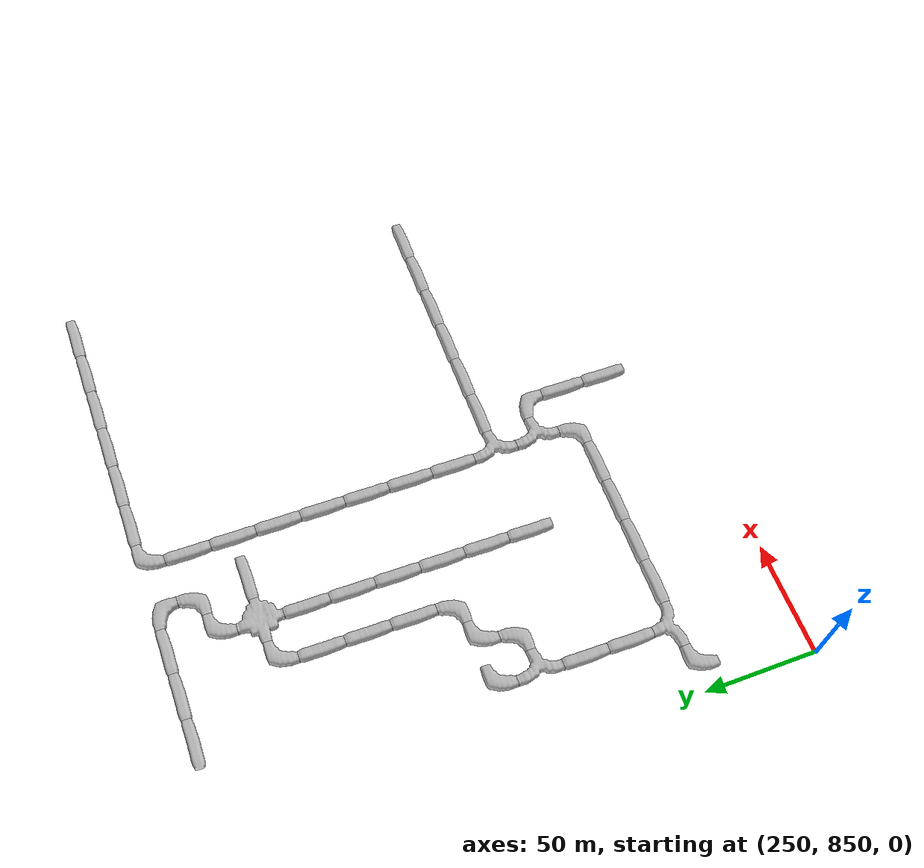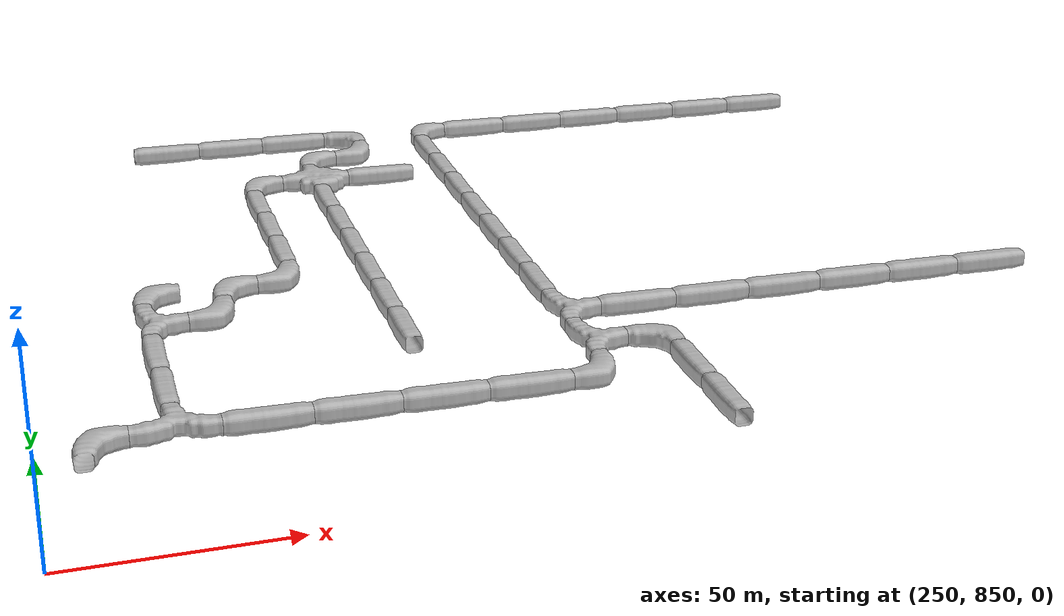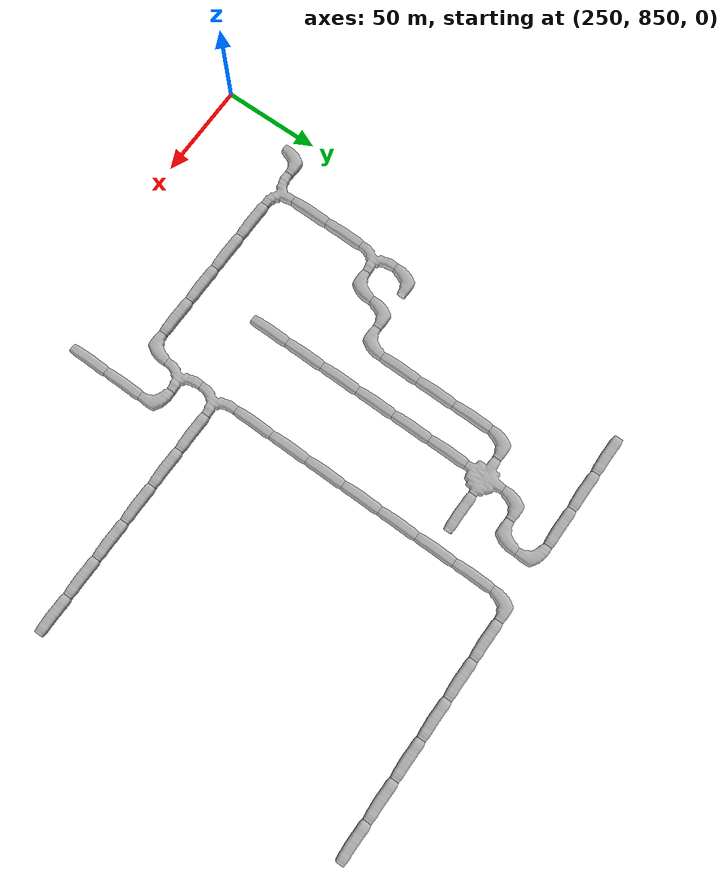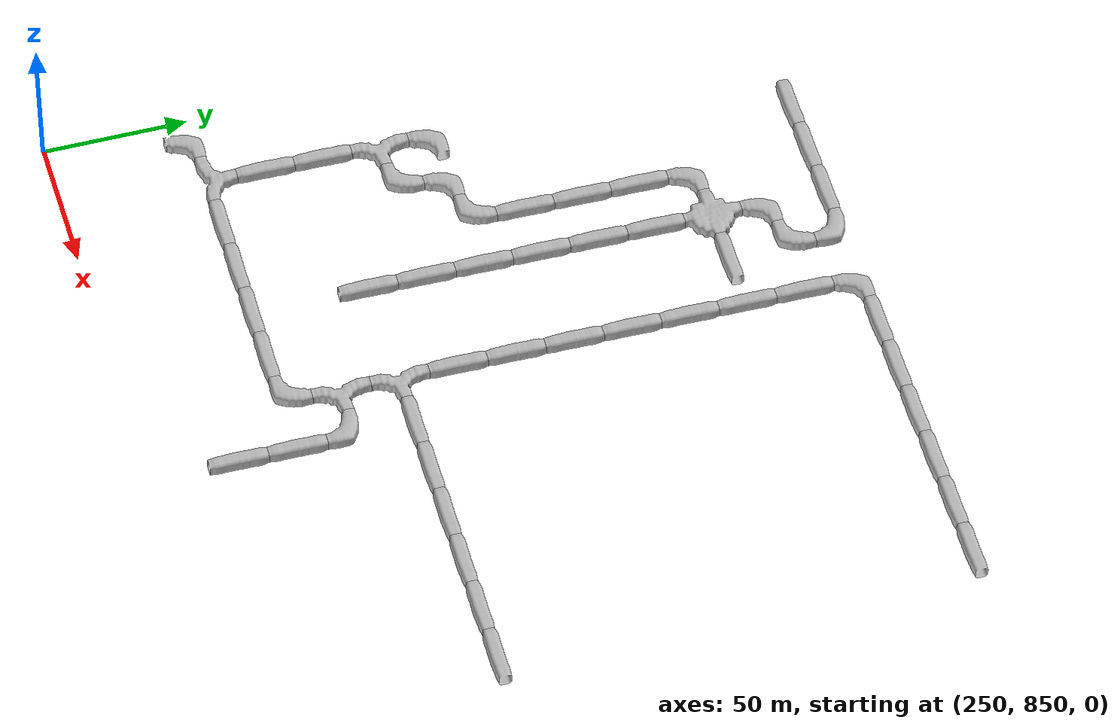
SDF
<sdf version="1.6">
 <world name="cave_32000_2">
  <include>
   <static>true</static>
   <name>cave_25_47</name>
   <pose>500 940 0 0 0 1.5707963267948966</pose>
   <uri>model://cave_straight_20m</uri>
  </include>
  <include>
   <static>true</static>
   <name>cave_24_47</name>
   <pose>480 940 0 0 0 1.5707963267948966</pose>
   <uri>model://cave_straight_20m</uri>
  </include>
  <include>
   <static>true</static>
   <name>cave_23_47</name>
   <pose>460 940 0 0 0 1.5707963267948966</pose>
   <uri>model://cave_straight_20m</uri>
  </include>
  <include>
   <static>true</static>
   <name>cave_22_47</name>
   <pose>440 940 0 0 0 1.5707963267948966</pose>
   <uri>model://cave_straight_20m</uri>
  </include>
  <include>
   <static>true</static>
   <name>cave_21_47</name>
   <pose>420 940 0 0 0 1.5707963267948966</pose>
   <uri>model://cave_straight_20m</uri>
  </include>
  <include>
   <static>true</static>
   <name>cave_20_47</name>
   <pose>400 940 0 0 0 1.5707963267948966</pose>
   <uri>model://cave_straight_20m</uri>
  </include>
  <include>
   <static>true</static>
   <name>cave_19_47</name>
   <pose>380 940 0 0 0 -1.5707963267948966</pose>
   <uri>model://cave_3way_20m</uri>
  </include>
  <include>
   <static>true</static>
   <name>cave_19_46</name>
   <pose>380 920 0 0 0 -1.5707963267948966</pose>
   <uri>model://cave_3way_20m</uri>
  </include>
  <include>
   <static>true</static>
   <name>cave_20_46</name>
   <pose>400 920 0 0 0 3.141592653589793</pose>
   <uri>model://cave_L_20m</uri>
  </include>
  <include>
   <static>true</static>
   <name>cave_20_45</name>
   <pose>400 900 0 0 0 0.0</pose>
   <uri>model://cave_straight_20m</uri>
  </include>
  <include>
   <static>true</static>
   <name>cave_20_44</name>
   <pose>400 880 0 0 0 0.0</pose>
   <uri>model://cave_straight_20m</uri>
  </include>
  <include>
   <static>true</static>
   <name>cave_19_45</name>
   <pose>380 900 0 0 0 1.5707963267948966</pose>
   <uri>model://cave_L_20m</uri>
  </include>
  <include>
   <static>true</static>
   <name>cave_18_45</name>
   <pose>360 900 0 0 0 1.5707963267948966</pose>
   <uri>model://cave_straight_20m</uri>
  </include>
  <include>
   <static>true</static>
   <name>cave_17_45</name>
   <pose>340 900 0 0 0 1.5707963267948966</pose>
   <uri>model://cave_straight_20m</uri>
  </include>
  <include>
   <static>true</static>
   <name>cave_16_45</name>
   <pose>320 900 0 0 0 1.5707963267948966</pose>
   <uri>model://cave_straight_20m</uri>
  </include>
  <include>
   <static>true</static>
   <name>cave_15_45</name>
   <pose>300 900 0 0 0 1.5707963267948966</pose>
   <uri>model://cave_straight_20m</uri>
  </include>
  <include>
   <static>true</static>
   <name>cave_14_45</name>
   <pose>280 900 0 0 0 0.0</pose>
   <uri>model://cave_3way_20m</uri>
  </include>
  <include>
   <static>true</static>
   <name>cave_13_45</name>
   <pose>260 900 0 0 0 -1.5707963267948966</pose>
   <uri>model://cave_L_20m</uri>
  </include>
  <include>
   <static>true</static>
   <name>cave_14_46</name>
   <pose>280 920 0 0 0 0.0</pose>
   <uri>model://cave_straight_20m</uri>
  </include>
  <include>
   <static>true</static>
   <name>cave_14_47</name>
   <pose>280 940 0 0 0 0.0</pose>
   <uri>model://cave_straight_20m</uri>
  </include>
  <include>
   <static>true</static>
   <name>cave_14_48</name>
   <pose>280 960 0 0 0 -1.5707963267948966</pose>
   <uri>model://cave_3way_20m</uri>
  </include>
  <include>
   <static>true</static>
   <name>cave_15_48</name>
   <pose>300 960 0 0 0 1.5707963267948966</pose>
   <uri>model://cave_L_20m</uri>
  </include>
  <include>
   <static>true</static>
   <name>cave_15_49</name>
   <pose>300 980 0 0 0 -1.5707963267948966</pose>
   <uri>model://cave_L_20m</uri>
  </include>
  <include>
   <static>true</static>
   <name>cave_16_49</name>
   <pose>320 980 0 0 0 1.5707963267948966</pose>
   <uri>model://cave_L_20m</uri>
  </include>
  <include>
   <static>true</static>
   <name>cave_16_50</name>
   <pose>320 1000 0 0 0 0.0</pose>
   <uri>model://cave_straight_20m</uri>
  </include>
  <include>
   <static>true</static>
   <name>cave_16_51</name>
   <pose>320 1020 0 0 0 0.0</pose>
   <uri>model://cave_straight_20m</uri>
  </include>
  <include>
   <static>true</static>
   <name>cave_16_52</name>
   <pose>320 1040 0 0 0 0.0</pose>
   <uri>model://cave_straight_20m</uri>
  </include>
  <include>
   <static>true</static>
   <name>cave_16_53</name>
   <pose>320 1060 0 0 0 -1.5707963267948966</pose>
   <uri>model://cave_L_20m</uri>
  </include>
  <include>
   <static>true</static>
   <name>cave_17_53</name>
   <pose>340 1060 0 0 0 -1.5707963267948966</pose>
   <uri>model://cave_4way_20m</uri>
  </include>
  <include>
   <static>true</static>
   <name>cave_18_53</name>
   <pose>360 1060 0 0 0 1.5707963267948966</pose>
   <uri>model://cave_straight_20m</uri>
  </include>
  <include>
   <static>true</static>
   <name>cave_17_52</name>
   <pose>340 1040 0 0 0 0.0</pose>
   <uri>model://cave_straight_20m</uri>
  </include>
  <include>
   <static>true</static>
   <name>cave_17_51</name>
   <pose>340 1020 0 0 0 0.0</pose>
   <uri>model://cave_straight_20m</uri>
  </include>
  <include>
   <static>true</static>
   <name>cave_17_50</name>
   <pose>340 1000 0 0 0 0.0</pose>
   <uri>model://cave_straight_20m</uri>
  </include>
  <include>
   <static>true</static>
   <name>cave_17_49</name>
   <pose>340 980 0 0 0 0.0</pose>
   <uri>model://cave_straight_20m</uri>
  </include>
  <include>
   <static>true</static>
   <name>cave_17_48</name>
   <pose>340 960 0 0 0 0.0</pose>
   <uri>model://cave_straight_20m</uri>
  </include>
  <include>
   <static>true</static>
   <name>cave_17_47</name>
   <pose>340 940 0 0 0 0.0</pose>
   <uri>model://cave_straight_20m</uri>
  </include>
  <include>
   <static>true</static>
   <name>cave_17_54</name>
   <pose>340 1080 0 0 0 -1.5707963267948966</pose>
   <uri>model://cave_L_20m</uri>
  </include>
  <include>
   <static>true</static>
   <name>cave_18_54</name>
   <pose>360 1080 0 0 0 1.5707963267948966</pose>
   <uri>model://cave_L_20m</uri>
  </include>
  <include>
   <static>true</static>
   <name>cave_18_55</name>
   <pose>360 1100 0 0 0 3.141592653589793</pose>
   <uri>model://cave_L_20m</uri>
  </include>
  <include>
   <static>true</static>
   <name>cave_17_55</name>
   <pose>340 1100 0 0 0 1.5707963267948966</pose>
   <uri>model://cave_straight_20m</uri>
  </include>
  <include>
   <static>true</static>
   <name>cave_16_55</name>
   <pose>320 1100 0 0 0 1.5707963267948966</pose>
   <uri>model://cave_straight_20m</uri>
  </include>
  <include>
   <static>true</static>
   <name>cave_15_55</name>
   <pose>300 1100 0 0 0 1.5707963267948966</pose>
   <uri>model://cave_straight_20m</uri>
  </include>
  <include>
   <static>true</static>
   <name>cave_14_49</name>
   <pose>280 980 0 0 0 -1.5707963267948966</pose>
   <uri>model://cave_L_20m</uri>
  </include>
  <include>
   <static>true</static>
   <name>cave_19_48</name>
   <pose>380 960 0 0 0 0.0</pose>
   <uri>model://cave_straight_20m</uri>
  </include>
  <include>
   <static>true</static>
   <name>cave_19_49</name>
   <pose>380 980 0 0 0 0.0</pose>
   <uri>model://cave_straight_20m</uri>
  </include>
  <include>
   <static>true</static>
   <name>cave_19_50</name>
   <pose>380 1000 0 0 0 0.0</pose>
   <uri>model://cave_straight_20m</uri>
  </include>
  <include>
   <static>true</static>
   <name>cave_19_51</name>
   <pose>380 1020 0 0 0 0.0</pose>
   <uri>model://cave_straight_20m</uri>
  </include>
  <include>
   <static>true</static>
   <name>cave_19_52</name>
   <pose>380 1040 0 0 0 0.0</pose>
   <uri>model://cave_straight_20m</uri>
  </include>
  <include>
   <static>true</static>
   <name>cave_19_53</name>
   <pose>380 1060 0 0 0 0.0</pose>
   <uri>model://cave_straight_20m</uri>
  </include>
  <include>
   <static>true</static>
   <name>cave_19_54</name>
   <pose>380 1080 0 0 0 0.0</pose>
   <uri>model://cave_straight_20m</uri>
  </include>
  <include>
   <static>true</static>
   <name>cave_19_55</name>
   <pose>380 1100 0 0 0 -1.5707963267948966</pose>
   <uri>model://cave_L_20m</uri>
  </include>
  <include>
   <static>true</static>
   <name>cave_20_55</name>
   <pose>400 1100 0 0 0 1.5707963267948966</pose>
   <uri>model://cave_straight_20m</uri>
  </include>
  <include>
   <static>true</static>
   <name>cave_21_55</name>
   <pose>420 1100 0 0 0 1.5707963267948966</pose>
   <uri>model://cave_straight_20m</uri>
  </include>
  <include>
   <static>true</static>
   <name>cave_22_55</name>
   <pose>440 1100 0 0 0 1.5707963267948966</pose>
   <uri>model://cave_straight_20m</uri>
  </include>
  <include>
   <static>true</static>
   <name>cave_23_55</name>
   <pose>460 1100 0 0 0 1.5707963267948966</pose>
   <uri>model://cave_straight_20m</uri>
  </include>
  <include>
   <static>true</static>
   <name>cave_24_55</name>
   <pose>480 1100 0 0 0 1.5707963267948966</pose>
   <uri>model://cave_straight_20m</uri>
  </include>
  <include>
   <static>true</static>
   <name>cave_25_55</name>
   <pose>500 1100 0 0 0 1.5707963267948966</pose>
   <uri>model://cave_straight_20m</uri>
  </include>
 </world>
</sdf>
